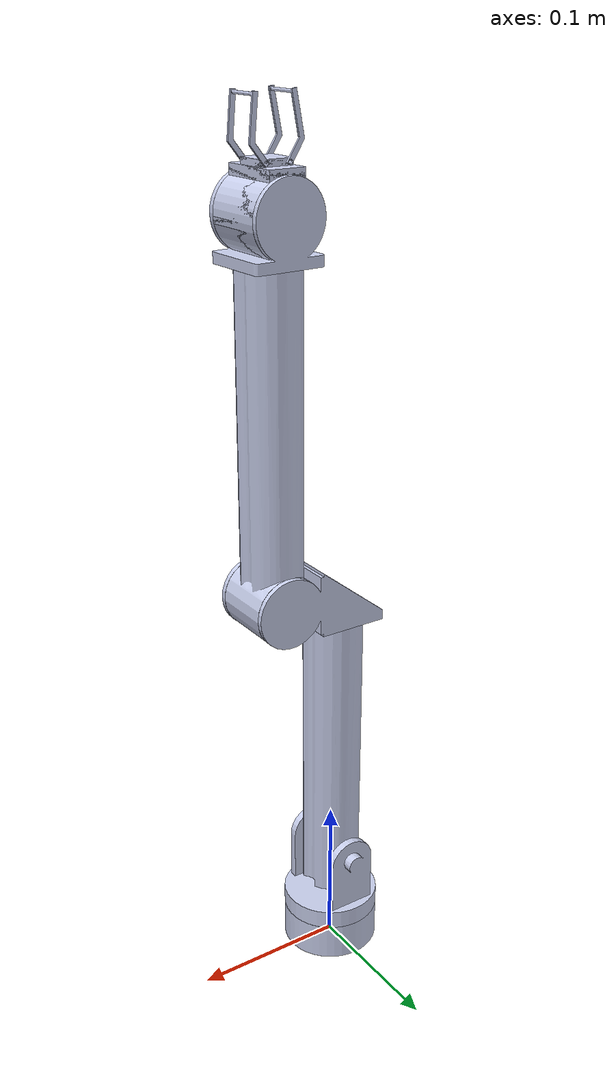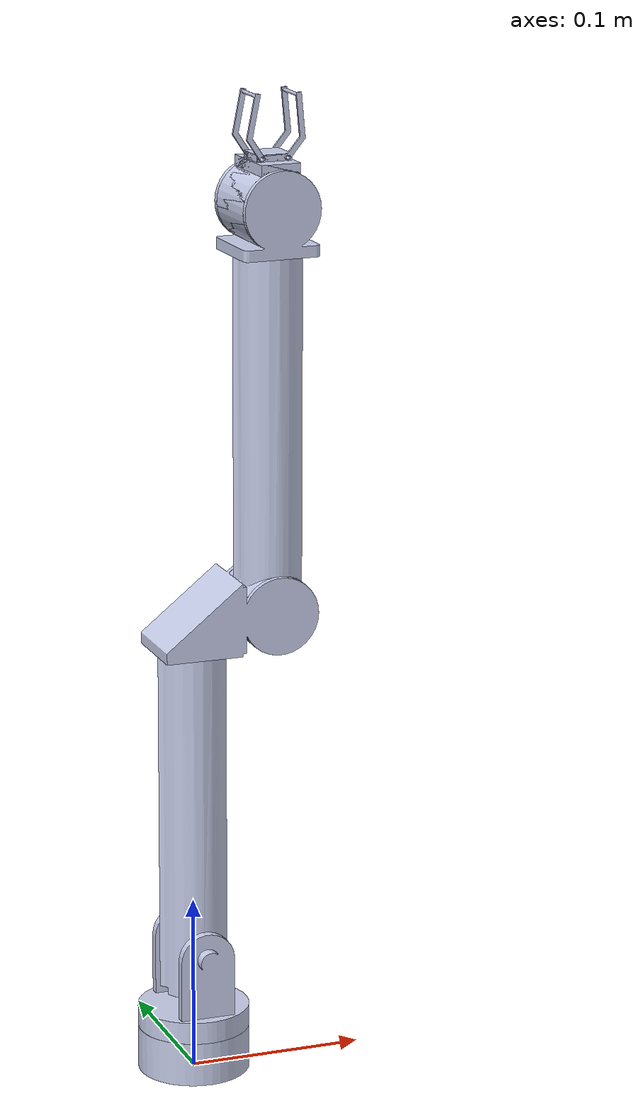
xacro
<?xml version="1.0"?>
<robot name ="sra_integrated" xmlns:xacro="http://wiki.ros.org/xacro">

  <!-- WORLD -->

  <link name="world"/>
  <joint name="ArmWorldJoint" type="fixed">
    <origin rpy="0 0 0" xyz="0 0 0"/>
    <parent link="world"/>
    <child link="ArmDummyLink"/>
  </joint>

  <!-- ROBOT -->

  <xacro:include filename="sra.urdf"/>

  <!-- ROBOT JOINT TRANSMISSIONS -->

  <transmission name="BaseJoint_Transmitter">
    <type>transmission_interface/SimpleTransmission</type>
    <joint name="BaseJoint">
      <hardwareInterface>hardware_interface/EffortJointInterface</hardwareInterface>
    </joint>
    <actuator name="BaseJoint_Motor">
      <mechanicalReduction>50</mechanicalReduction>
    </actuator>
  </transmission>
  <transmission name="ShoulderJoint_Transmitter">
    <type>transmission_interface/SimpleTransmission</type>
    <joint name="ShoulderJoint">
      <hardwareInterface>hardware_interface/EffortJointInterface</hardwareInterface>
    </joint>
    <actuator name="ShoulderJoint_Motor">
      <mechanicalReduction>50</mechanicalReduction>
    </actuator>
  </transmission>
  <transmission name="ElbowJoint_Transmitter">
    <type>transmission_interface/SimpleTransmission</type>
    <joint name="ElbowJoint">
      <hardwareInterface>hardware_interface/EffortJointInterface</hardwareInterface>
    </joint>
    <actuator name="ElbowJoint_Motor">
      <mechanicalReduction>50</mechanicalReduction>
    </actuator>
  </transmission>
  <transmission name="WristJoint">
    <type>transmission_interface/SimpleTransmission</type>
    <joint name="WristJoint">
      <hardwareInterface>hardware_interface/EffortJointInterface</hardwareInterface>
    </joint>
    <actuator name="WristJoint_Motor">
      <mechanicalReduction>50</mechanicalReduction>
    </actuator>
  </transmission>

  <!-- ROS CONTROL LIBRARY -->

  <gazebo>
    <plugin name="gazebo_ros_control" filename="libgazebo_ros_control.so">
      <robotNamespace>/sra_integrated</robotNamespace>
      <robotSimType>gazebo_ros_control/DefaultRobotHWSim</robotSimType>
      <legacyModeNS>true</legacyModeNS>
    </plugin>
  </gazebo>
</robot>

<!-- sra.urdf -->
<robot name="sra">

  <!-- ROBOT DUMMIES -->

  <link name="ArmDummyLink"/>
  <joint name="ArmDummyJoint" type="fixed">
    <origin rpy="0 0 0" xyz="0 0 0"/>
    <parent link="ArmDummyLink"/>
    <child link="ArmBaseLink"/>
  </joint>

  <!-- ROBOT LINKS -->

  <link name="ArmBaseLink">
    <inertial>
      <origin
        xyz="-3.2661E-19 -7.7765E-19 0.0127"
        rpy="0 0 0" />
      <mass value="0.08044" />
      <inertia
        ixx="2.4597E-05"
        ixy="5.9791E-38"
        ixz="-9.7646E-22"
        iyy="2.4597E-05"
        iyz="-9.765E-22"
        izz="4.0544E-05" />
    </inertial>
    <visual>
      <origin
        xyz="0 0 0"
        rpy="0 0 0" />
      <geometry>
        <mesh filename="package://srr_sim/meshes/sra/ArmBaseLink.STL" />
      </geometry>
      <material name="">
        <color rgba="0.79216 0.81961 0.93333 1" />
      </material>
    </visual>
    <collision>
      <origin
        xyz="0 0 0"
        rpy="0 0 0" />
      <geometry>
        <mesh filename="package://srr_sim/meshes/sra/ArmBaseLink.STL" />
      </geometry>
    </collision>
  </link>
  <joint name="BaseJoint" type="revolute">
    <origin
      xyz="0 0 0.073354"
      rpy="0 0 0" />
    <parent link="ArmBaseLink" />
    <child link="BaseToShoulderLink" />
    <axis xyz="0 0 1" />
    <limit
      lower="-3.14159265"
      upper="3.14159265"
      effort="125"
      velocity="0" />
  </joint>
  <link name="BaseToShoulderLink">
    <inertial>
      <origin
        xyz="-1.0922E-16 5.4252E-18 -0.029816"
        rpy="0 0 0" />
      <mass value="0.06206" />
      <inertia
        ixx="3.1832E-05"
        ixy="4.0883E-21"
        ixz="-4.1377E-21"
        iyy="2.314E-05"
        iyz="-5.8062E-21"
        izz="3.1465E-05" />
    </inertial>
    <visual>
      <origin
        xyz="0 0 0"
        rpy="0 0 0" />
      <geometry>
        <mesh filename="package://srr_sim/meshes/sra/BaseToShoulderLink.STL" />
      </geometry>
      <material name="">
        <color rgba="0.79216 0.81961 0.93333 1" />
      </material>
    </visual>
    <collision>
      <origin
        xyz="0 0 0"
        rpy="0 0 0" />
      <geometry>
        <mesh filename="package://srr_sim/meshes/sra/BaseToShoulderLink.STL" />
      </geometry>
    </collision>
  </link>
  <joint name="ShoulderJoint" type="revolute">
    <origin
      xyz="0 0 0"
      rpy="-1.5708 0 0" />
    <parent link="BaseToShoulderLink" />
    <child link="ShoulderToElbowDummyLink" />
    <axis xyz="0 0 1" />
    <limit
      lower="-3.14159265"
      upper="3.14159265"
      effort="125"
      velocity="0" />
  </joint>
  <link name="ShoulderToElbowDummyLink">
    <inertial>
      <origin
        xyz="9.5178E-09 -0.077956 1.1951E-07"
        rpy="0 0 0" />
      <mass value="0.20651" />
      <inertia
        ixx="0.00071889"
        ixy="5.7664E-11"
        ixz="-1.047E-11"
        iyy="3.5523E-05"
        iyz="2.7172E-10"
        izz="0.00071391" />
    </inertial>
    <visual>
      <origin
        xyz="0 0 0"
        rpy="0 0 0" />
      <geometry>
        <mesh filename="package://srr_sim/meshes/sra/ShoulderToElbowDummyLink.STL" />
      </geometry>
      <material name="">
        <color rgba="0.79216 0.81961 0.93333 1" />
      </material>
    </visual>
    <collision>
      <origin
        xyz="0 0 0"
        rpy="0 0 0" />
      <geometry>
        <mesh filename="package://srr_sim/meshes/sra/ShoulderToElbowDummyLink.STL" />
      </geometry>
    </collision>
  </link>
  <joint name="ElbowDummyJoint" type="fixed">
    <origin
      xyz="0 -0.19622 0"
      rpy="-1.5699 0 -1.5708" />
    <parent link="ShoulderToElbowDummyLink" />
    <child link="ElbowDummyToElbowLink" />
    <axis xyz="0 0 0" />
  </joint>
  <link name="ElbowDummyToElbowLink">
    <inertial>
      <origin
        xyz="-0.0046316 -1.6291E-19 0.013246"
        rpy="0 0 0" />
      <mass value="0.057319" />
      <inertia
        ixx="3.2017E-05"
        ixy="-2.0077E-21"
        ixz="-4.3427E-06"
        iyy="2.588E-05"
        iyz="7.1435E-21"
        izz="1.8287E-05" />
    </inertial>
    <visual>
      <origin
        xyz="0 0 0"
        rpy="0 0 0" />
      <geometry>
        <mesh filename="package://srr_sim/meshes/sra/ElbowDummyToElbowLink.STL" />
      </geometry>
      <material name="">
        <color rgba="0.79216 0.81961 0.93333 1" />
      </material>
    </visual>
    <collision>
      <origin
        xyz="0 0 0"
        rpy="0 0 0" />
      <geometry>
        <mesh filename="package://srr_sim/meshes/sra/ElbowDummyToElbowLink.STL" />
      </geometry>
    </collision>
  </link>
  <joint name="ElbowJoint" type="revolute">
    <origin
      xyz="0 0.000127 0.044653"
      rpy="1.5708 0 0" />
    <parent link="ElbowDummyToElbowLink" />
    <child link="ElbowToWristDummyLink" />
    <axis xyz="0 0 1" />
    <limit
      lower="-3.14159265"
      upper="3.14159265"
      effort="125"
      velocity="0" />
  </joint>
  <link name="ElbowToWristDummyLink">
    <inertial>
      <origin
        xyz="0.0859457002041171 -4.76514517150362E-08 -6.07913708871384E-09"
        rpy="0 0 0" />
      <mass value="0.254411955196347" />
      <inertia
        ixx="4.82915370297559E-05"
        ixy="-4.11218298859846E-10"
        ixz="-2.66009415786698E-10"
        iyy="0.00114293173407415"
        iyz="1.00207802188044E-09"
        izz="0.00113966996171655" />
    </inertial>
    <visual>
      <origin
        xyz="0 0 0"
        rpy="0 0 0" />
      <geometry>
        <mesh filename="package://srr_sim/meshes/sra/ElbowToWristDummyLink.STL" />
      </geometry>
      <material name="">
        <color rgba="0.792156862745098 0.819607843137255 0.933333333333333 1" />
      </material>
    </visual>
    <collision>
      <origin
        xyz="0 0 0"
        rpy="0 0 0" />
      <geometry>
        <mesh filename="package://srr_sim/meshes/sra/ElbowToWristDummyLink.STL" />
      </geometry>
    </collision>
  </link>
  <joint name="WristDummyJoint" type="fixed">
    <origin
      xyz="0.2267 0 0"
      rpy="0.033844 0 0.00012806" />
    <parent link="ElbowToWristDummyLink" />
    <child link="WristDummyToWristLink" />
    <axis xyz="0 0 0" />
  </joint>
  <link name="WristDummyToWristLink">
    <inertial>
      <origin
        xyz="-0.010365 1.3281E-06 -4.0549E-17"
        rpy="0 0 0" />
      <mass value="0.018159" />
      <inertia
        ixx="8.7777E-06"
        ixy="6.5632E-11"
        ixz="3.7739E-21"
        iyy="9.2899E-06"
        iyz="-1.2441E-21"
        izz="6.5965E-06" />
    </inertial>
    <visual>
      <origin
        xyz="0 0 0"
        rpy="0 0 0" />
      <geometry>
        <mesh filename="package://srr_sim/meshes/sra/WristDummyToWristLink.STL" />
      </geometry>
      <material name="">
        <color rgba="0.79216 0.81961 0.93333 1" />
      </material>
    </visual>
    <collision>
      <origin
        xyz="0 0 0"
        rpy="0 0 0" />
      <geometry>
        <mesh filename="package://srr_sim/meshes/sra/WristDummyToWristLink.STL" />
      </geometry>
    </collision>
  </link>
  <joint name="WristJoint" type="revolute">
    <origin
      xyz="0 0 0"
      rpy="0 0 -1.5708" />
    <parent link="WristDummyToWristLink" />
    <child link="WristToGripperLink" />
    <axis xyz="0 0 1" />
    <limit
      lower="-3.14159265"
      upper="3.14159265"
      effort="125"
      velocity="0" />
  </joint>
  <link name="WristToGripperLink">
    <inertial>
      <origin
        xyz="6.93889390390723E-18 0.00187028459715766 -1.51788304147971E-18"
        rpy="0 0 0" />
      <mass value="0.0640611944357688" />
      <inertia
        ixx="1.76418435994478E-05"
        ixy="4.81026205714899E-21"
        ixz="-7.94093388050907E-22"
        iyy="1.51643333221916E-05"
        iyz="2.3152009863535E-21"
        izz="1.75401124672356E-05" />
    </inertial>
    <visual>
      <origin
        xyz="0 0 0"
        rpy="0 0 0" />
      <geometry>
        <mesh filename="package://srr_sim/meshes/sra/WristToGripperLink.STL" />
      </geometry>
      <material name="">
        <color rgba="0.792156862745098 0.819607843137255 0.933333333333333 1" />
      </material>
    </visual>
    <collision>
      <origin
        xyz="0 0 0"
        rpy="0 0 0" />
      <geometry>
        <mesh filename="package://srr_sim/meshes/sra/WristToGripperLink.STL" />
      </geometry>
    </collision>
  </link>
  <joint name="GripperJoint" type="fixed">
    <origin
      xyz="0 0.0254 0.009525"
      rpy="-1.5708 0 0" />
    <parent link="WristToGripperLink" />
    <child link="GripperToFinger" />
    <axis xyz="0 0 0" />
  </joint>
  <link name="GripperToFinger">
    <inertial>
      <origin
        xyz="6.9389E-18 0.009525 -0.02353"
        rpy="0 0 0" />
      <mass value="0.064061" />
      <inertia
        ixx="1.7642E-05"
        ixy="7.9409E-22"
        ixz="1.2031E-21"
        iyy="1.754E-05"
        iyz="-3.0217E-21"
        izz="1.5164E-05" />
    </inertial>
    <visual>
      <origin
        xyz="0 0 0"
        rpy="0 0 0" />
      <geometry>
        <mesh filename="package://srr_sim/meshes/sra/GripperToFinger.STL" />
      </geometry>
      <material name="">
        <color rgba="0.79216 0.81961 0.93333 1" />
      </material>
    </visual>
    <collision>
      <origin
        xyz="0 0 0"
        rpy="0 0 0" />
      <geometry>
        <mesh filename="package://srr_sim/meshes/sra/GripperToFinger.STL" />
      </geometry>
    </collision>
  </link>
  <joint name="LFingerJoint" type="revolute">
    <origin
      xyz="-0.00762 0.009525 0.001905"
      rpy="1.5708 0.88304 0" />
    <parent link="GripperToFinger" />
    <child link="LeftFinger" />
    <axis xyz="0 0 1" />
    <limit
      lower="-3.14159265"
      upper="3.14159265"
      effort="125"
      velocity="0" />
  </joint>
  <link name="LeftFinger">
    <inertial>
      <origin
        xyz="-0.0186190688837656 0.00741270089060464 -1.89084858881472E-16"
        rpy="0 0 0" />
      <mass value="0.000346143112791696" />
      <inertia
        ixx="4.72102551979473E-08"
        ixy="1.9979772763792E-08"
        ixz="2.17548501101446E-22"
        iyy="6.13681088501549E-08"
        iyz="-5.15333521620536E-22"
        izz="4.49638260468465E-08" />
    </inertial>
    <visual>
      <origin
        xyz="0 0 0"
        rpy="0 0 0" />
      <geometry>
        <mesh filename="package://srr_sim/meshes/sra/LeftFinger.STL" />
      </geometry>
      <material name="">
        <color rgba="0.792156862745098 0.819607843137255 0.933333333333333 1" />
      </material>
    </visual>
    <collision>
      <origin
        xyz="0 0 0"
        rpy="0 0 0" />
      <geometry>
        <mesh filename="package://srr_sim/meshes/sra/LeftFinger.STL" />
      </geometry>
    </collision>
  </link>
  <joint name="RFingerJoint" type="revolute">
    <origin
      xyz="0.00762 0.009525 0.001905"
      rpy="1.5708 0.98268 -3.14159265" />
    <parent link="GripperToFinger" />
    <child link="RightFinger" />
    <axis xyz="0 0 1" />
    <limit
      lower="-3.14159265"
      upper="3.14159265"
      effort="125"
      velocity="0" />
  </joint>
  <link name="RightFinger">
    <inertial>
      <origin
        xyz="-0.018619 0.0074127 -1.5613E-17"
        rpy="0 0 0" />
      <mass value="0.00034614" />
      <inertia
        ixx="4.721E-08"
        ixy="1.998E-08"
        ixz="-3.4431E-23"
        iyy="6.1368E-08"
        iyz="-4.2807E-23"
        izz="4.4964E-08" />
    </inertial>
    <visual>
      <origin
        xyz="0 0 0"
        rpy="0 0 0" />
      <geometry>
        <mesh filename="package://srr_sim/meshes/sra/RightFinger.STL" />
      </geometry>
      <material name="">
        <color rgba="0.79216 0.81961 0.93333 1" />
      </material>
    </visual>
    <collision>
      <origin
        xyz="0 0 0"
        rpy="0 0 0" />
      <geometry>
        <mesh filename="package://srr_sim/meshes/sra/RightFinger.STL" />
      </geometry>
    </collision>
  </link>

</robot>
